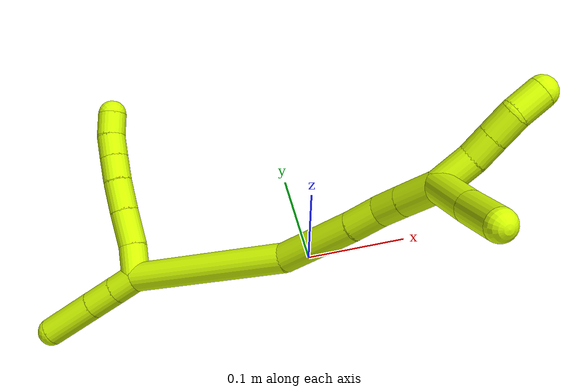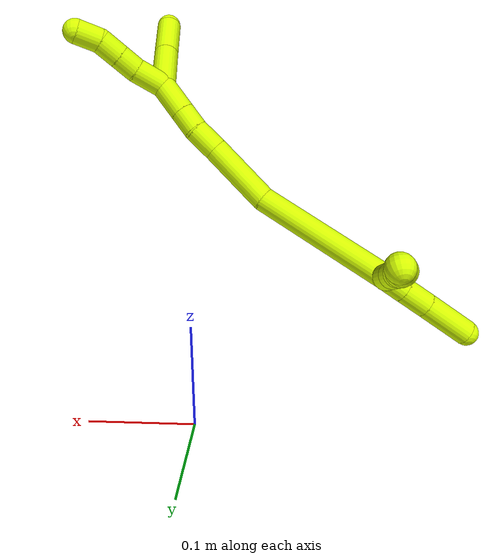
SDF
<sdf version="1.7">
 <world name="default">
  <model name="15">
   <static>0</static>
   <link name="15">
    <collision name="collision-cylinder-e_1_2_8">
     <pose>0.007453 0.009101 -0.007374 -2.25174 0.566703 -1.09649</pose>
     <geometry><cylinder><radius>0.0125</radius><length>0.027767</length></cylinder></geometry>
     <surface>
      <friction><ode><mu>1.16</mu><mu2>1.16</mu2><slip1>0</slip1><slip2>0</slip2></ode></friction>
      <contact><ode><kp>1e+06</kp><kd>1</kd><max_vel>0</max_vel><min_depth>0.001</min_depth></ode></contact>
     </surface>
    </collision>
    <visual name="visual-cylinder-e_1_2_8">
     <pose>0.007453 0.009101 -0.007374 -2.25174 0.566703 -1.09649</pose>
     <geometry><cylinder><radius>0.0125</radius><length>0.027767</length></cylinder></geometry>
     <material><ambient>0.835294 1 0 1</ambient></material>
    </visual>
    <collision name="collision-cylinder-e_2_8_9">
     <pose>0.021651 0.030265 -0.022565 -2.1458 0.438692 -0.778402</pose>
     <geometry><cylinder><radius>0.0125</radius><length>0.031757</length></cylinder></geometry>
     <surface>
      <friction><ode><mu>1.16</mu><mu2>1.16</mu2><slip1>0</slip1><slip2>0</slip2></ode></friction>
      <contact><ode><kp>1e+06</kp><kd>1</kd><max_vel>0</max_vel><min_depth>0.001</min_depth></ode></contact>
     </surface>
    </collision>
    <visual name="visual-cylinder-e_2_8_9">
     <pose>0.021651 0.030265 -0.022565 -2.1458 0.438692 -0.778402</pose>
     <geometry><cylinder><radius>0.0125</radius><length>0.031757</length></cylinder></geometry>
     <material><ambient>0.835294 1 0 1</ambient></material>
    </visual>
    <collision name="collision-cylinder-e_3_9_10">
     <pose>0.03469 0.052662 -0.037267 -2.15851 0.469155 -0.839673</pose>
     <geometry><cylinder><radius>0.0125</radius><length>0.027841</length></cylinder></geometry>
     <surface>
      <friction><ode><mu>1.16</mu><mu2>1.16</mu2><slip1>0</slip1><slip2>0</slip2></ode></friction>
      <contact><ode><kp>1e+06</kp><kd>1</kd><max_vel>0</max_vel><min_depth>0.001</min_depth></ode></contact>
     </surface>
    </collision>
    <visual name="visual-cylinder-e_3_9_10">
     <pose>0.03469 0.052662 -0.037267 -2.15851 0.469155 -0.839673</pose>
     <geometry><cylinder><radius>0.0125</radius><length>0.027841</length></cylinder></geometry>
     <material><ambient>0.835294 1 0 1</ambient></material>
    </visual>
    <collision name="collision-cylinder-e_4_10_11">
     <pose>0.046565 0.070756 -0.049898 -2.20818 0.524064 -0.978343</pose>
     <geometry><cylinder><radius>0.0125</radius><length>0.022308</length></cylinder></geometry>
     <surface>
      <friction><ode><mu>1.16</mu><mu2>1.16</mu2><slip1>0</slip1><slip2>0</slip2></ode></friction>
      <contact><ode><kp>1e+06</kp><kd>1</kd><max_vel>0</max_vel><min_depth>0.001</min_depth></ode></contact>
     </surface>
    </collision>
    <visual name="visual-cylinder-e_4_10_11">
     <pose>0.046565 0.070756 -0.049898 -2.20818 0.524064 -0.978343</pose>
     <geometry><cylinder><radius>0.0125</radius><length>0.022308</length></cylinder></geometry>
     <material><ambient>0.835294 1 0 1</ambient></material>
    </visual>
    <collision name="collision-cylinder-e_5_11_12">
     <pose>0.057381 0.085651 -0.06051 -2.16929 0.544958 -0.972788</pose>
     <geometry><cylinder><radius>0.0125</radius><length>0.020197</length></cylinder></geometry>
     <surface>
      <friction><ode><mu>1.16</mu><mu2>1.16</mu2><slip1>0</slip1><slip2>0</slip2></ode></friction>
      <contact><ode><kp>1e+06</kp><kd>1</kd><max_vel>0</max_vel><min_depth>0.001</min_depth></ode></contact>
     </surface>
    </collision>
    <visual name="visual-cylinder-e_5_11_12">
     <pose>0.057381 0.085651 -0.06051 -2.16929 0.544958 -0.972788</pose>
     <geometry><cylinder><radius>0.0125</radius><length>0.020197</length></cylinder></geometry>
     <material><ambient>0.835294 1 0 1</ambient></material>
    </visual>
    <collision name="collision-cylinder-e_6_12_6">
     <pose>0.069336 0.09902 -0.069533 -2.15892 0.731066 -1.24177</pose>
     <geometry><cylinder><radius>0.0125</radius><length>0.02013</length></cylinder></geometry>
     <surface>
      <friction><ode><mu>1.16</mu><mu2>1.16</mu2><slip1>0</slip1><slip2>0</slip2></ode></friction>
      <contact><ode><kp>1e+06</kp><kd>1</kd><max_vel>0</max_vel><min_depth>0.001</min_depth></ode></contact>
     </surface>
    </collision>
    <visual name="visual-cylinder-e_6_12_6">
     <pose>0.069336 0.09902 -0.069533 -2.15892 0.731066 -1.24177</pose>
     <geometry><cylinder><radius>0.0125</radius><length>0.02013</length></cylinder></geometry>
     <material><ambient>0.835294 1 0 1</ambient></material>
    </visual>
    <collision name="collision-cylinder-e_1_2_13">
     <pose>-0.010345 -0.000733 -0.004968 2.99519 -1.11888 -2.90842</pose>
     <geometry><cylinder><radius>0.0125</radius><length>0.022999</length></cylinder></geometry>
     <surface>
      <friction><ode><mu>1.16</mu><mu2>1.16</mu2><slip1>0</slip1><slip2>0</slip2></ode></friction>
      <contact><ode><kp>1e+06</kp><kd>1</kd><max_vel>0</max_vel><min_depth>0.001</min_depth></ode></contact>
     </surface>
    </collision>
    <visual name="visual-cylinder-e_1_2_13">
     <pose>-0.010345 -0.000733 -0.004968 2.99519 -1.11888 -2.90842</pose>
     <geometry><cylinder><radius>0.0125</radius><length>0.022999</length></cylinder></geometry>
     <material><ambient>0.835294 1 0 1</ambient></material>
    </visual>
    <collision name="collision-cylinder-e_2_13_14">
     <pose>-0.032987 -0.002222 -0.015758 3.01235 -1.12535 -2.9371</pose>
     <geometry><cylinder><radius>0.0125</radius><length>0.027254</length></cylinder></geometry>
     <surface>
      <friction><ode><mu>1.16</mu><mu2>1.16</mu2><slip1>0</slip1><slip2>0</slip2></ode></friction>
      <contact><ode><kp>1e+06</kp><kd>1</kd><max_vel>0</max_vel><min_depth>0.001</min_depth></ode></contact>
     </surface>
    </collision>
    <visual name="visual-cylinder-e_2_13_14">
     <pose>-0.032987 -0.002222 -0.015758 3.01235 -1.12535 -2.9371</pose>
     <geometry><cylinder><radius>0.0125</radius><length>0.027254</length></cylinder></geometry>
     <material><ambient>0.835294 1 0 1</ambient></material>
    </visual>
    <collision name="collision-cylinder-e_3_14_5">
     <pose>-0.06764 -0.004502 -0.032379 3.00139 -1.11696 -2.91778</pose>
     <geometry><cylinder><radius>0.0125</radius><length>0.049748</length></cylinder></geometry>
     <surface>
      <friction><ode><mu>1.16</mu><mu2>1.16</mu2><slip1>0</slip1><slip2>0</slip2></ode></friction>
      <contact><ode><kp>1e+06</kp><kd>1</kd><max_vel>0</max_vel><min_depth>0.001</min_depth></ode></contact>
     </surface>
    </collision>
    <visual name="visual-cylinder-e_3_14_5">
     <pose>-0.06764 -0.004502 -0.032379 3.00139 -1.11696 -2.91778</pose>
     <geometry><cylinder><radius>0.0125</radius><length>0.049748</length></cylinder></geometry>
     <material><ambient>0.835294 1 0 1</ambient></material>
    </visual>
    <collision name="collision-cylinder-e_1_2_15">
     <pose>0.052286 -0.01622 0.04669 0.334349 0.8135 0.14513</pose>
     <geometry><cylinder><radius>0.0125</radius><length>0.1439</length></cylinder></geometry>
     <surface>
      <friction><ode><mu>1.16</mu><mu2>1.16</mu2><slip1>0</slip1><slip2>0</slip2></ode></friction>
      <contact><ode><kp>1e+06</kp><kd>1</kd><max_vel>0</max_vel><min_depth>0.001</min_depth></ode></contact>
     </surface>
    </collision>
    <visual name="visual-cylinder-e_1_2_15">
     <pose>0.052286 -0.01622 0.04669 0.334349 0.8135 0.14513</pose>
     <geometry><cylinder><radius>0.0125</radius><length>0.1439</length></cylinder></geometry>
     <material><ambient>0.835294 1 0 1</ambient></material>
    </visual>
    <collision name="collision-cylinder-e_2_15_16">
     <pose>0.130812 -0.029419 0.116605 -0.129305 0.842111 -0.057972</pose>
     <geometry><cylinder><radius>0.0125</radius><length>0.070345</length></cylinder></geometry>
     <surface>
      <friction><ode><mu>1.16</mu><mu2>1.16</mu2><slip1>0</slip1><slip2>0</slip2></ode></friction>
      <contact><ode><kp>1e+06</kp><kd>1</kd><max_vel>0</max_vel><min_depth>0.001</min_depth></ode></contact>
     </surface>
    </collision>
    <visual name="visual-cylinder-e_2_15_16">
     <pose>0.130812 -0.029419 0.116605 -0.129305 0.842111 -0.057972</pose>
     <geometry><cylinder><radius>0.0125</radius><length>0.070345</length></cylinder></geometry>
     <material><ambient>0.835294 1 0 1</ambient></material>
    </visual>
    <collision name="collision-cylinder-e_3_16_17">
     <pose>0.168145 -0.024914 0.14837 -0.172175 0.907529 -0.084129</pose>
     <geometry><cylinder><radius>0.0125</radius><length>0.028155</length></cylinder></geometry>
     <surface>
      <friction><ode><mu>1.16</mu><mu2>1.16</mu2><slip1>0</slip1><slip2>0</slip2></ode></friction>
      <contact><ode><kp>1e+06</kp><kd>1</kd><max_vel>0</max_vel><min_depth>0.001</min_depth></ode></contact>
     </surface>
    </collision>
    <visual name="visual-cylinder-e_3_16_17">
     <pose>0.168145 -0.024914 0.14837 -0.172175 0.907529 -0.084129</pose>
     <geometry><cylinder><radius>0.0125</radius><length>0.028155</length></cylinder></geometry>
     <material><ambient>0.835294 1 0 1</ambient></material>
    </visual>
    <collision name="collision-cylinder-e_4_17_18">
     <pose>0.186769 -0.021877 0.165609 -0.176569 0.705754 -0.065175</pose>
     <geometry><cylinder><radius>0.0125</radius><length>0.023221</length></cylinder></geometry>
     <surface>
      <friction><ode><mu>1.16</mu><mu2>1.16</mu2><slip1>0</slip1><slip2>0</slip2></ode></friction>
      <contact><ode><kp>1e+06</kp><kd>1</kd><max_vel>0</max_vel><min_depth>0.001</min_depth></ode></contact>
     </surface>
    </collision>
    <visual name="visual-cylinder-e_4_17_18">
     <pose>0.186769 -0.021877 0.165609 -0.176569 0.705754 -0.065175</pose>
     <geometry><cylinder><radius>0.0125</radius><length>0.023221</length></cylinder></geometry>
     <material><ambient>0.835294 1 0 1</ambient></material>
    </visual>
    <collision name="collision-cylinder-e_5_18_1">
     <pose>0.205371 -0.018111 0.18727 -0.169139 0.699814 -0.06185</pose>
     <geometry><cylinder><radius>0.0125</radius><length>0.034379</length></cylinder></geometry>
     <surface>
      <friction><ode><mu>1.16</mu><mu2>1.16</mu2><slip1>0</slip1><slip2>0</slip2></ode></friction>
      <contact><ode><kp>1e+06</kp><kd>1</kd><max_vel>0</max_vel><min_depth>0.001</min_depth></ode></contact>
     </surface>
    </collision>
    <visual name="visual-cylinder-e_5_18_1">
     <pose>0.205371 -0.018111 0.18727 -0.169139 0.699814 -0.06185</pose>
     <geometry><cylinder><radius>0.0125</radius><length>0.034379</length></cylinder></geometry>
     <material><ambient>0.835294 1 0 1</ambient></material>
    </visual>
    <collision name="collision-cylinder-e_1_1_19">
     <pose>0.214706 -0.015912 0.226745 0.000539 -0.065396 -1.8e-05</pose>
     <geometry><cylinder><radius>0.0125</radius><length>0.05314</length></cylinder></geometry>
     <surface>
      <friction><ode><mu>1.16</mu><mu2>1.16</mu2><slip1>0</slip1><slip2>0</slip2></ode></friction>
      <contact><ode><kp>1e+06</kp><kd>1</kd><max_vel>0</max_vel><min_depth>0.001</min_depth></ode></contact>
     </surface>
    </collision>
    <visual name="visual-cylinder-e_1_1_19">
     <pose>0.214706 -0.015912 0.226745 0.000539 -0.065396 -1.8e-05</pose>
     <geometry><cylinder><radius>0.0125</radius><length>0.05314</length></cylinder></geometry>
     <material><ambient>0.835294 1 0 1</ambient></material>
    </visual>
    <collision name="collision-cylinder-e_2_19_4">
     <pose>0.211626 -0.014534 0.276608 -0.059561 -0.057382 0.00171</pose>
     <geometry><cylinder><radius>0.0125</radius><length>0.04686</length></cylinder></geometry>
     <surface>
      <friction><ode><mu>1.16</mu><mu2>1.16</mu2><slip1>0</slip1><slip2>0</slip2></ode></friction>
      <contact><ode><kp>1e+06</kp><kd>1</kd><max_vel>0</max_vel><min_depth>0.001</min_depth></ode></contact>
     </surface>
    </collision>
    <visual name="visual-cylinder-e_2_19_4">
     <pose>0.211626 -0.014534 0.276608 -0.059561 -0.057382 0.00171</pose>
     <geometry><cylinder><radius>0.0125</radius><length>0.04686</length></cylinder></geometry>
     <material><ambient>0.835294 1 0 1</ambient></material>
    </visual>
    <collision name="collision-cylinder-e_1_1_20">
     <pose>0.231611 -0.014287 0.203995 -0.404333 1.30722 -0.311433</pose>
     <geometry><cylinder><radius>0.0125</radius><length>0.031423</length></cylinder></geometry>
     <surface>
      <friction><ode><mu>1.16</mu><mu2>1.16</mu2><slip1>0</slip1><slip2>0</slip2></ode></friction>
      <contact><ode><kp>1e+06</kp><kd>1</kd><max_vel>0</max_vel><min_depth>0.001</min_depth></ode></contact>
     </surface>
    </collision>
    <visual name="visual-cylinder-e_1_1_20">
     <pose>0.231611 -0.014287 0.203995 -0.404333 1.30722 -0.311433</pose>
     <geometry><cylinder><radius>0.0125</radius><length>0.031423</length></cylinder></geometry>
     <material><ambient>0.835294 1 0 1</ambient></material>
    </visual>
    <collision name="collision-cylinder-e_2_20_21">
     <pose>0.256484 -0.009757 0.210759 -0.771708 1.16349 -0.522114</pose>
     <geometry><cylinder><radius>0.0125</radius><length>0.021137</length></cylinder></geometry>
     <surface>
      <friction><ode><mu>1.16</mu><mu2>1.16</mu2><slip1>0</slip1><slip2>0</slip2></ode></friction>
      <contact><ode><kp>1e+06</kp><kd>1</kd><max_vel>0</max_vel><min_depth>0.001</min_depth></ode></contact>
     </surface>
    </collision>
    <visual name="visual-cylinder-e_2_20_21">
     <pose>0.256484 -0.009757 0.210759 -0.771708 1.16349 -0.522114</pose>
     <geometry><cylinder><radius>0.0125</radius><length>0.021137</length></cylinder></geometry>
     <material><ambient>0.835294 1 0 1</ambient></material>
    </visual>
    <collision name="collision-cylinder-e_3_21_22">
     <pose>0.276691 -0.003741 0.217066 -0.752553 1.16358 -0.508492</pose>
     <geometry><cylinder><radius>0.0125</radius><length>0.022877</length></cylinder></geometry>
     <surface>
      <friction><ode><mu>1.16</mu><mu2>1.16</mu2><slip1>0</slip1><slip2>0</slip2></ode></friction>
      <contact><ode><kp>1e+06</kp><kd>1</kd><max_vel>0</max_vel><min_depth>0.001</min_depth></ode></contact>
     </surface>
    </collision>
    <visual name="visual-cylinder-e_3_21_22">
     <pose>0.276691 -0.003741 0.217066 -0.752553 1.16358 -0.508492</pose>
     <geometry><cylinder><radius>0.0125</radius><length>0.022877</length></cylinder></geometry>
     <material><ambient>0.835294 1 0 1</ambient></material>
    </visual>
    <collision name="collision-cylinder-e_4_22_3">
     <pose>0.299436 -0.000283 0.221287 -0.377333 1.49072 -0.348875</pose>
     <geometry><cylinder><radius>0.0125</radius><length>0.024562</length></cylinder></geometry>
     <surface>
      <friction><ode><mu>1.16</mu><mu2>1.16</mu2><slip1>0</slip1><slip2>0</slip2></ode></friction>
      <contact><ode><kp>1e+06</kp><kd>1</kd><max_vel>0</max_vel><min_depth>0.001</min_depth></ode></contact>
     </surface>
    </collision>
    <visual name="visual-cylinder-e_4_22_3">
     <pose>0.299436 -0.000283 0.221287 -0.377333 1.49072 -0.348875</pose>
     <geometry><cylinder><radius>0.0125</radius><length>0.024562</length></cylinder></geometry>
     <material><ambient>0.835294 1 0 1</ambient></material>
    </visual>
    <collision name="collision-sphere-3">
     <pose>0.311678 7.9e-05 0.2222 0 -0 0</pose>
     <geometry><sphere><radius>0.0125</radius></sphere></geometry>
     <surface>
      <friction><ode><mu>1.16</mu><mu2>1.16</mu2><slip1>0</slip1><slip2>0</slip2></ode></friction>
      <contact><ode><kp>1e+06</kp><kd>1</kd><max_vel>0</max_vel><min_depth>0.001</min_depth></ode></contact>
     </surface>
    </collision>
    <visual name="visual-sphere-3">
     <pose>0.311678 7.9e-05 0.2222 0 -0 0</pose>
     <geometry><sphere><radius>0.0125</radius></sphere></geometry>
     <material><ambient>0.835294 1 0 1</ambient></material>
    </visual>
    <collision name="collision-sphere-22">
     <pose>0.287195 -0.000645 0.220373 0 -0 0</pose>
     <geometry><sphere><radius>0.0125</radius></sphere></geometry>
     <surface>
      <friction><ode><mu>1.16</mu><mu2>1.16</mu2><slip1>0</slip1><slip2>0</slip2></ode></friction>
      <contact><ode><kp>1e+06</kp><kd>1</kd><max_vel>0</max_vel><min_depth>0.001</min_depth></ode></contact>
     </surface>
    </collision>
    <visual name="visual-sphere-22">
     <pose>0.287195 -0.000645 0.220373 0 -0 0</pose>
     <geometry><sphere><radius>0.0125</radius></sphere></geometry>
     <material><ambient>0.835294 1 0 1</ambient></material>
    </visual>
    <collision name="collision-sphere-21">
     <pose>0.266188 -0.006838 0.21376 0 -0 0</pose>
     <geometry><sphere><radius>0.0125</radius></sphere></geometry>
     <surface>
      <friction><ode><mu>1.16</mu><mu2>1.16</mu2><slip1>0</slip1><slip2>0</slip2></ode></friction>
      <contact><ode><kp>1e+06</kp><kd>1</kd><max_vel>0</max_vel><min_depth>0.001</min_depth></ode></contact>
     </surface>
    </collision>
    <visual name="visual-sphere-21">
     <pose>0.266188 -0.006838 0.21376 0 -0 0</pose>
     <geometry><sphere><radius>0.0125</radius></sphere></geometry>
     <material><ambient>0.835294 1 0 1</ambient></material>
    </visual>
    <collision name="collision-sphere-20">
     <pose>0.24678 -0.012677 0.207758 0 -0 0</pose>
     <geometry><sphere><radius>0.0125</radius></sphere></geometry>
     <surface>
      <friction><ode><mu>1.16</mu><mu2>1.16</mu2><slip1>0</slip1><slip2>0</slip2></ode></friction>
      <contact><ode><kp>1e+06</kp><kd>1</kd><max_vel>0</max_vel><min_depth>0.001</min_depth></ode></contact>
     </surface>
    </collision>
    <visual name="visual-sphere-20">
     <pose>0.24678 -0.012677 0.207758 0 -0 0</pose>
     <geometry><sphere><radius>0.0125</radius></sphere></geometry>
     <material><ambient>0.835294 1 0 1</ambient></material>
    </visual>
    <collision name="collision-sphere-4">
     <pose>0.210282 -0.013142 0.299958 0 -0 0</pose>
     <geometry><sphere><radius>0.0125</radius></sphere></geometry>
     <surface>
      <friction><ode><mu>1.16</mu><mu2>1.16</mu2><slip1>0</slip1><slip2>0</slip2></ode></friction>
      <contact><ode><kp>1e+06</kp><kd>1</kd><max_vel>0</max_vel><min_depth>0.001</min_depth></ode></contact>
     </surface>
    </collision>
    <visual name="visual-sphere-4">
     <pose>0.210282 -0.013142 0.299958 0 -0 0</pose>
     <geometry><sphere><radius>0.0125</radius></sphere></geometry>
     <material><ambient>0.835294 1 0 1</ambient></material>
    </visual>
    <collision name="collision-sphere-12">
     <pose>0.062616 0.092786 -0.065376 0 -0 0</pose>
     <geometry><sphere><radius>0.0125</radius></sphere></geometry>
     <surface>
      <friction><ode><mu>1.16</mu><mu2>1.16</mu2><slip1>0</slip1><slip2>0</slip2></ode></friction>
      <contact><ode><kp>1e+06</kp><kd>1</kd><max_vel>0</max_vel><min_depth>0.001</min_depth></ode></contact>
     </surface>
    </collision>
    <visual name="visual-sphere-12">
     <pose>0.062616 0.092786 -0.065376 0 -0 0</pose>
     <geometry><sphere><radius>0.0125</radius></sphere></geometry>
     <material><ambient>0.835294 1 0 1</ambient></material>
    </visual>
    <collision name="collision-sphere-11">
     <pose>0.052147 0.078517 -0.055645 0 -0 0</pose>
     <geometry><sphere><radius>0.0125</radius></sphere></geometry>
     <surface>
      <friction><ode><mu>1.16</mu><mu2>1.16</mu2><slip1>0</slip1><slip2>0</slip2></ode></friction>
      <contact><ode><kp>1e+06</kp><kd>1</kd><max_vel>0</max_vel><min_depth>0.001</min_depth></ode></contact>
     </surface>
    </collision>
    <visual name="visual-sphere-11">
     <pose>0.052147 0.078517 -0.055645 0 -0 0</pose>
     <geometry><sphere><radius>0.0125</radius></sphere></geometry>
     <material><ambient>0.835294 1 0 1</ambient></material>
    </visual>
    <collision name="collision-sphere-10">
     <pose>0.040984 0.062995 -0.044151 0 -0 0</pose>
     <geometry><sphere><radius>0.0125</radius></sphere></geometry>
     <surface>
      <friction><ode><mu>1.16</mu><mu2>1.16</mu2><slip1>0</slip1><slip2>0</slip2></ode></friction>
      <contact><ode><kp>1e+06</kp><kd>1</kd><max_vel>0</max_vel><min_depth>0.001</min_depth></ode></contact>
     </surface>
    </collision>
    <visual name="visual-sphere-10">
     <pose>0.040984 0.062995 -0.044151 0 -0 0</pose>
     <geometry><sphere><radius>0.0125</radius></sphere></geometry>
     <material><ambient>0.835294 1 0 1</ambient></material>
    </visual>
    <collision name="collision-sphere-9">
     <pose>0.028396 0.042329 -0.030383 0 -0 0</pose>
     <geometry><sphere><radius>0.0125</radius></sphere></geometry>
     <surface>
      <friction><ode><mu>1.16</mu><mu2>1.16</mu2><slip1>0</slip1><slip2>0</slip2></ode></friction>
      <contact><ode><kp>1e+06</kp><kd>1</kd><max_vel>0</max_vel><min_depth>0.001</min_depth></ode></contact>
     </surface>
    </collision>
    <visual name="visual-sphere-9">
     <pose>0.028396 0.042329 -0.030383 0 -0 0</pose>
     <geometry><sphere><radius>0.0125</radius></sphere></geometry>
     <material><ambient>0.835294 1 0 1</ambient></material>
    </visual>
    <collision name="collision-sphere-2">
     <geometry><sphere><radius>0.0125</radius></sphere></geometry>
     <surface>
      <friction><ode><mu>1.16</mu><mu2>1.16</mu2><slip1>0</slip1><slip2>0</slip2></ode></friction>
      <contact><ode><kp>1e+06</kp><kd>1</kd><max_vel>0</max_vel><min_depth>0.001</min_depth></ode></contact>
     </surface>
    </collision>
    <visual name="visual-sphere-2">
     <geometry><sphere><radius>0.0125</radius></sphere></geometry>
     <material><ambient>0.835294 1 0 1</ambient></material>
    </visual>
    <collision name="collision-sphere-19">
     <pose>0.212969 -0.015926 0.253258 0 -0 0</pose>
     <geometry><sphere><radius>0.0125</radius></sphere></geometry>
     <surface>
      <friction><ode><mu>1.16</mu><mu2>1.16</mu2><slip1>0</slip1><slip2>0</slip2></ode></friction>
      <contact><ode><kp>1e+06</kp><kd>1</kd><max_vel>0</max_vel><min_depth>0.001</min_depth></ode></contact>
     </surface>
    </collision>
    <visual name="visual-sphere-19">
     <pose>0.212969 -0.015926 0.253258 0 -0 0</pose>
     <geometry><sphere><radius>0.0125</radius></sphere></geometry>
     <material><ambient>0.835294 1 0 1</ambient></material>
    </visual>
    <collision name="collision-sphere-8">
     <pose>0.014907 0.018202 -0.014747 0 -0 0</pose>
     <geometry><sphere><radius>0.0125</radius></sphere></geometry>
     <surface>
      <friction><ode><mu>1.16</mu><mu2>1.16</mu2><slip1>0</slip1><slip2>0</slip2></ode></friction>
      <contact><ode><kp>1e+06</kp><kd>1</kd><max_vel>0</max_vel><min_depth>0.001</min_depth></ode></contact>
     </surface>
    </collision>
    <visual name="visual-sphere-8">
     <pose>0.014907 0.018202 -0.014747 0 -0 0</pose>
     <geometry><sphere><radius>0.0125</radius></sphere></geometry>
     <material><ambient>0.835294 1 0 1</ambient></material>
    </visual>
    <collision name="collision-sphere-6">
     <pose>0.076056 0.105254 -0.07369 0 -0 0</pose>
     <geometry><sphere><radius>0.0125</radius></sphere></geometry>
     <surface>
      <friction><ode><mu>1.16</mu><mu2>1.16</mu2><slip1>0</slip1><slip2>0</slip2></ode></friction>
      <contact><ode><kp>1e+06</kp><kd>1</kd><max_vel>0</max_vel><min_depth>0.001</min_depth></ode></contact>
     </surface>
    </collision>
    <visual name="visual-sphere-6">
     <pose>0.076056 0.105254 -0.07369 0 -0 0</pose>
     <geometry><sphere><radius>0.0125</radius></sphere></geometry>
     <material><ambient>0.835294 1 0 1</ambient></material>
    </visual>
    <collision name="collision-sphere-13">
     <pose>-0.02069 -0.001465 -0.009936 0 -0 0</pose>
     <geometry><sphere><radius>0.0125</radius></sphere></geometry>
     <surface>
      <friction><ode><mu>1.16</mu><mu2>1.16</mu2><slip1>0</slip1><slip2>0</slip2></ode></friction>
      <contact><ode><kp>1e+06</kp><kd>1</kd><max_vel>0</max_vel><min_depth>0.001</min_depth></ode></contact>
     </surface>
    </collision>
    <visual name="visual-sphere-13">
     <pose>-0.02069 -0.001465 -0.009936 0 -0 0</pose>
     <geometry><sphere><radius>0.0125</radius></sphere></geometry>
     <material><ambient>0.835294 1 0 1</ambient></material>
    </visual>
    <collision name="collision-sphere-14">
     <pose>-0.045284 -0.002979 -0.021581 0 -0 0</pose>
     <geometry><sphere><radius>0.0125</radius></sphere></geometry>
     <surface>
      <friction><ode><mu>1.16</mu><mu2>1.16</mu2><slip1>0</slip1><slip2>0</slip2></ode></friction>
      <contact><ode><kp>1e+06</kp><kd>1</kd><max_vel>0</max_vel><min_depth>0.001</min_depth></ode></contact>
     </surface>
    </collision>
    <visual name="visual-sphere-14">
     <pose>-0.045284 -0.002979 -0.021581 0 -0 0</pose>
     <geometry><sphere><radius>0.0125</radius></sphere></geometry>
     <material><ambient>0.835294 1 0 1</ambient></material>
    </visual>
    <collision name="collision-sphere-5">
     <pose>-0.089996 -0.006026 -0.043177 0 -0 0</pose>
     <geometry><sphere><radius>0.0125</radius></sphere></geometry>
     <surface>
      <friction><ode><mu>1.16</mu><mu2>1.16</mu2><slip1>0</slip1><slip2>0</slip2></ode></friction>
      <contact><ode><kp>1e+06</kp><kd>1</kd><max_vel>0</max_vel><min_depth>0.001</min_depth></ode></contact>
     </surface>
    </collision>
    <visual name="visual-sphere-5">
     <pose>-0.089996 -0.006026 -0.043177 0 -0 0</pose>
     <geometry><sphere><radius>0.0125</radius></sphere></geometry>
     <material><ambient>0.835294 1 0 1</ambient></material>
    </visual>
    <collision name="collision-sphere-15">
     <pose>0.104572 -0.032439 0.093379 0 -0 0</pose>
     <geometry><sphere><radius>0.0125</radius></sphere></geometry>
     <surface>
      <friction><ode><mu>1.16</mu><mu2>1.16</mu2><slip1>0</slip1><slip2>0</slip2></ode></friction>
      <contact><ode><kp>1e+06</kp><kd>1</kd><max_vel>0</max_vel><min_depth>0.001</min_depth></ode></contact>
     </surface>
    </collision>
    <visual name="visual-sphere-15">
     <pose>0.104572 -0.032439 0.093379 0 -0 0</pose>
     <geometry><sphere><radius>0.0125</radius></sphere></geometry>
     <material><ambient>0.835294 1 0 1</ambient></material>
    </visual>
    <collision name="collision-sphere-16">
     <pose>0.157053 -0.026399 0.13983 0 -0 0</pose>
     <geometry><sphere><radius>0.0125</radius></sphere></geometry>
     <surface>
      <friction><ode><mu>1.16</mu><mu2>1.16</mu2><slip1>0</slip1><slip2>0</slip2></ode></friction>
      <contact><ode><kp>1e+06</kp><kd>1</kd><max_vel>0</max_vel><min_depth>0.001</min_depth></ode></contact>
     </surface>
    </collision>
    <visual name="visual-sphere-16">
     <pose>0.157053 -0.026399 0.13983 0 -0 0</pose>
     <geometry><sphere><radius>0.0125</radius></sphere></geometry>
     <material><ambient>0.835294 1 0 1</ambient></material>
    </visual>
    <collision name="collision-sphere-17">
     <pose>0.179238 -0.023429 0.156909 0 -0 0</pose>
     <geometry><sphere><radius>0.0125</radius></sphere></geometry>
     <surface>
      <friction><ode><mu>1.16</mu><mu2>1.16</mu2><slip1>0</slip1><slip2>0</slip2></ode></friction>
      <contact><ode><kp>1e+06</kp><kd>1</kd><max_vel>0</max_vel><min_depth>0.001</min_depth></ode></contact>
     </surface>
    </collision>
    <visual name="visual-sphere-17">
     <pose>0.179238 -0.023429 0.156909 0 -0 0</pose>
     <geometry><sphere><radius>0.0125</radius></sphere></geometry>
     <material><ambient>0.835294 1 0 1</ambient></material>
    </visual>
    <collision name="collision-sphere-18">
     <pose>0.1943 -0.020325 0.174308 0 -0 0</pose>
     <geometry><sphere><radius>0.0125</radius></sphere></geometry>
     <surface>
      <friction><ode><mu>1.16</mu><mu2>1.16</mu2><slip1>0</slip1><slip2>0</slip2></ode></friction>
      <contact><ode><kp>1e+06</kp><kd>1</kd><max_vel>0</max_vel><min_depth>0.001</min_depth></ode></contact>
     </surface>
    </collision>
    <visual name="visual-sphere-18">
     <pose>0.1943 -0.020325 0.174308 0 -0 0</pose>
     <geometry><sphere><radius>0.0125</radius></sphere></geometry>
     <material><ambient>0.835294 1 0 1</ambient></material>
    </visual>
    <collision name="collision-sphere-1">
     <pose>0.216442 -0.015898 0.200231 0 -0 0</pose>
     <geometry><sphere><radius>0.0125</radius></sphere></geometry>
     <surface>
      <friction><ode><mu>1.16</mu><mu2>1.16</mu2><slip1>0</slip1><slip2>0</slip2></ode></friction>
      <contact><ode><kp>1e+06</kp><kd>1</kd><max_vel>0</max_vel><min_depth>0.001</min_depth></ode></contact>
     </surface>
    </collision>
    <visual name="visual-sphere-1">
     <pose>0.216442 -0.015898 0.200231 0 -0 0</pose>
     <geometry><sphere><radius>0.0125</radius></sphere></geometry>
     <material><ambient>0.835294 1 0 1</ambient></material>
    </visual>
    <inertial>
     <pose>0.108693 -0.001106 0.090415 0 -0 0</pose>
     <mass>0.75</mass>
     <inertia>
      <ixx>0.000262</ixx>
      <ixy>0</ixy>
      <ixz>0</ixz>
      <iyy>0.000357</iyy>
      <iyz>0</iyz>
      <izz>-0.000156</izz>
     </inertia>
    </inertial>
   </link>
   <pose>-0.17672 -0.070384 0.122002 0.93892 -0.326395 0.401432</pose>
  </model>
 </world>
</sdf>
